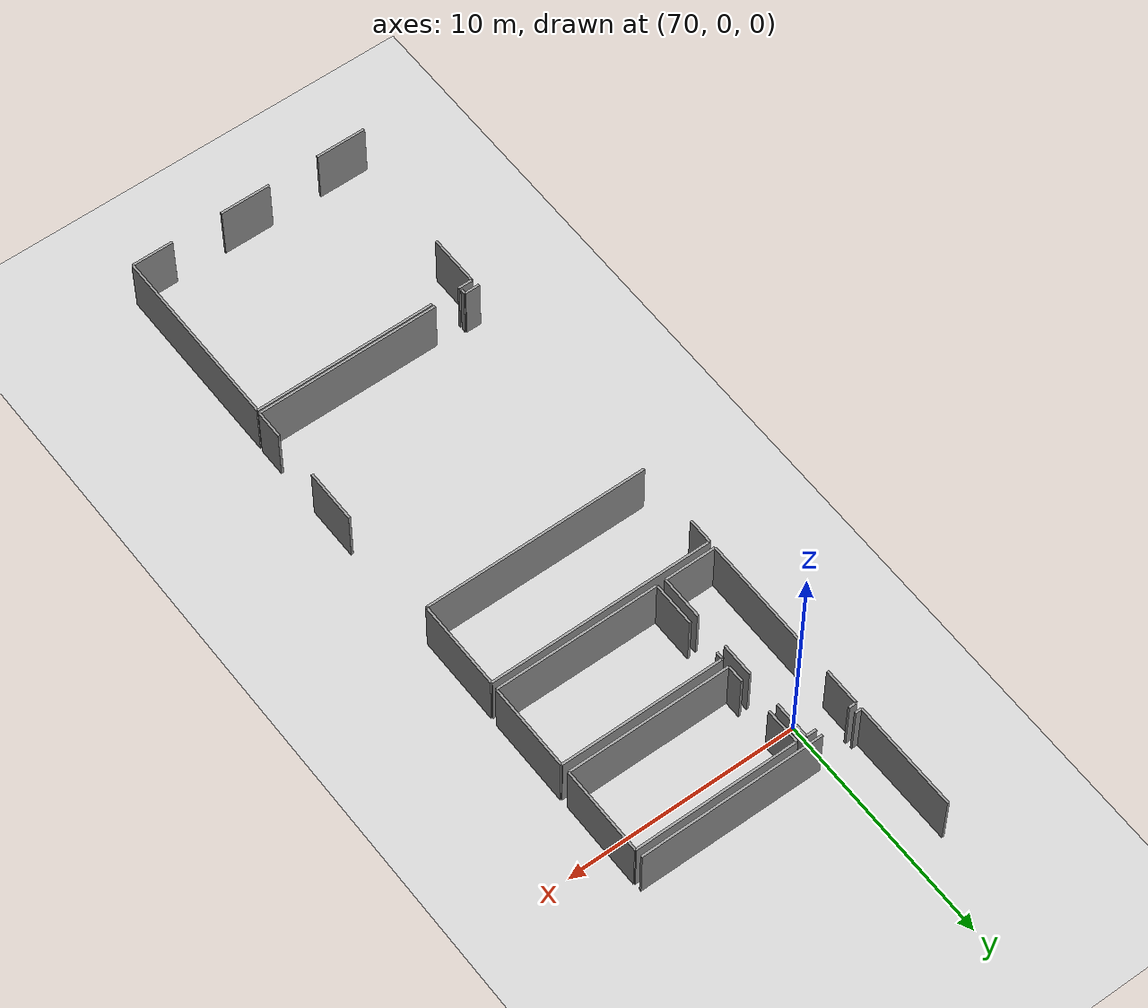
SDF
<sdf version="1.6">
 <world name="default">
  <model name="ground_plane">
   <static>1</static>
   <link name="link">
    <collision name="collision">
     <geometry><plane><normal>0 0 1</normal><size>100 100</size></plane></geometry>
     <surface><friction><ode><mu>100</mu><mu2>50</mu2></ode></friction></surface>
    </collision>
    <visual name="visual">
     <cast_shadows>0</cast_shadows>
     <geometry><plane><normal>0 0 1</normal><size>100 100</size></plane></geometry>
     <material>
      <script><uri>file://media/materials/scripts/gazebo.material</uri><name>Gazebo/Grey</name></script>
     </material>
    </visual>
   </link>
  </model>
  <model name="50010536_PLAN3">
   <static>1</static>
   <link name="Wall_795">
    <collision name="Wall_795_Collision">
     <geometry><box><size>7.95302034727 0.1 2.5</size></box></geometry>
     <pose>3.97651017363 0 1.25 0 0 0</pose>
    </collision>
    <visual name="Wall_795_Visual">
     <pose>3.97651017363 0 1.25 0 0 0</pose>
     <geometry><box><size>7.95302034727 0.1 2.5</size></box></geometry>
     <material>
      <script><uri>file://media/materials/scripts/gazebo.material</uri><name>Gazebo/Grey</name></script>
      <ambient>1 1 1 1</ambient>
     </material>
    </visual>
    <pose>180.776687934 -27.8071802685 0 0 0 3.14159265359</pose>
   </link>
   <link name="Wall_796">
    <collision name="Wall_796_Collision">
     <geometry><box><size>0.294829063899 0.1 2.5</size></box></geometry>
     <pose>0.147414531949 0 1.25 0 0 0</pose>
    </collision>
    <visual name="Wall_796_Visual">
     <pose>0.147414531949 0 1.25 0 0 0</pose>
     <geometry><box><size>0.294829063899 0.1 2.5</size></box></geometry>
     <material>
      <script><uri>file://media/materials/scripts/gazebo.material</uri><name>Gazebo/Grey</name></script>
      <ambient>1 1 1 1</ambient>
     </material>
    </visual>
    <pose>171.35968003 -27.8071802685 0 0 0 3.14159265359</pose>
   </link>
   <link name="Wall_797">
    <collision name="Wall_797_Collision">
     <geometry><box><size>4.70741069218 0.1 2.5</size></box></geometry>
     <pose>2.35370534609 0 1.25 0 0 0</pose>
    </collision>
    <visual name="Wall_797_Visual">
     <pose>2.35370534609 0 1.25 0 0 0</pose>
     <geometry><box><size>4.70741069218 0.1 2.5</size></box></geometry>
     <material>
      <script><uri>file://media/materials/scripts/gazebo.material</uri><name>Gazebo/Grey</name></script>
      <ambient>1 1 1 1</ambient>
     </material>
    </visual>
    <pose>171.064850967 -27.8071802685 0 0 0 1.5753817184</pose>
   </link>
   <link name="Wall_798">
    <collision name="Wall_798_Collision">
     <geometry><box><size>7.07996063867 0.1 2.5</size></box></geometry>
     <pose>3.53998031933 0 1.25 0 0 0</pose>
    </collision>
    <visual name="Wall_798_Visual">
     <pose>3.53998031933 0 1.25 0 0 0</pose>
     <geometry><box><size>7.07996063867 0.1 2.5</size></box></geometry>
     <material>
      <script><uri>file://media/materials/scripts/gazebo.material</uri><name>Gazebo/Grey</name></script>
      <ambient>1 1 1 1</ambient>
     </material>
    </visual>
    <pose>173.696727296 -28.1385772784 0 0 0 0.0</pose>
   </link>
   <link name="Wall_799">
    <collision name="Wall_799_Collision">
     <geometry><box><size>3.7992572136 0.1 2.5</size></box></geometry>
     <pose>1.8996286068 0 1.25 0 0 0</pose>
    </collision>
    <visual name="Wall_799_Visual">
     <pose>1.8996286068 0 1.25 0 0 0</pose>
     <geometry><box><size>3.7992572136 0.1 2.5</size></box></geometry>
     <material>
      <script><uri>file://media/materials/scripts/gazebo.material</uri><name>Gazebo/Grey</name></script>
      <ambient>1 1 1 1</ambient>
     </material>
    </visual>
    <pose>180.776687934 -28.1385772784 0 0 0 -1.57079632679</pose>
   </link>
   <link name="Wall_800">
    <collision name="Wall_800_Collision">
     <geometry><box><size>7.05939116909 0.1 2.5</size></box></geometry>
     <pose>3.52969558455 0 1.25 0 0 0</pose>
    </collision>
    <visual name="Wall_800_Visual">
     <pose>3.52969558455 0 1.25 0 0 0</pose>
     <geometry><box><size>7.05939116909 0.1 2.5</size></box></geometry>
     <material>
      <script><uri>file://media/materials/scripts/gazebo.material</uri><name>Gazebo/Grey</name></script>
      <ambient>1 1 1 1</ambient>
     </material>
    </visual>
    <pose>180.776687934 -31.937834492 0 0 0 3.14159265359</pose>
   </link>
   <link name="Wall_801">
    <collision name="Wall_801_Collision">
     <geometry><box><size>0.740500904676 0.1 2.5</size></box></geometry>
     <pose>0.370250452338 0 1.25 0 0 0</pose>
    </collision>
    <visual name="Wall_801_Visual">
     <pose>0.370250452338 0 1.25 0 0 0</pose>
     <geometry><box><size>0.740500904676 0.1 2.5</size></box></geometry>
     <material>
      <script><uri>file://media/materials/scripts/gazebo.material</uri><name>Gazebo/Grey</name></script>
      <ambient>1 1 1 1</ambient>
     </material>
    </visual>
    <pose>173.717296765 -31.937834492 0 0 0 1.57079632679</pose>
   </link>
   <link name="Wall_802">
    <collision name="Wall_802_Collision">
     <geometry><box><size>1.53929244152 0.1 2.5</size></box></geometry>
     <pose>0.76964622076 0 1.25 0 0 0</pose>
    </collision>
    <visual name="Wall_802_Visual">
     <pose>0.76964622076 0 1.25 0 0 0</pose>
     <geometry><box><size>1.53929244152 0.1 2.5</size></box></geometry>
     <material>
      <script><uri>file://media/materials/scripts/gazebo.material</uri><name>Gazebo/Grey</name></script>
      <ambient>1 1 1 1</ambient>
     </material>
    </visual>
    <pose>173.717296765 -29.6777322795 0 0 0 1.5841596626</pose>
   </link>
   <link name="Wall_803">
    <collision name="Wall_803_Collision">
     <geometry><box><size>1.9309906993 0.1 2.5</size></box></geometry>
     <pose>0.965495349649 0 1.25 0 0 0</pose>
    </collision>
    <visual name="Wall_803_Visual">
     <pose>0.965495349649 0 1.25 0 0 0</pose>
     <geometry><box><size>1.9309906993 0.1 2.5</size></box></geometry>
     <material>
      <script><uri>file://media/materials/scripts/gazebo.material</uri><name>Gazebo/Grey</name></script>
      <ambient>1 1 1 1</ambient>
     </material>
    </visual>
    <pose>173.700282513 -36.0997238358 0 0 0 1.57079632679</pose>
   </link>
   <link name="Wall_804">
    <collision name="Wall_804_Collision">
     <geometry><box><size>0.322001079262 0.1 2.5</size></box></geometry>
     <pose>0.161000539631 0 1.25 0 0 0</pose>
    </collision>
    <visual name="Wall_804_Visual">
     <pose>0.161000539631 0 1.25 0 0 0</pose>
     <geometry><box><size>0.322001079262 0.1 2.5</size></box></geometry>
     <material>
      <script><uri>file://media/materials/scripts/gazebo.material</uri><name>Gazebo/Grey</name></script>
      <ambient>1 1 1 1</ambient>
     </material>
    </visual>
    <pose>173.700282513 -32.6415135067 0 0 0 1.57079632679</pose>
   </link>
   <link name="Wall_805">
    <collision name="Wall_805_Collision">
     <geometry><box><size>7.10383138114 0.1 2.5</size></box></geometry>
     <pose>3.55191569057 0 1.25 0 0 0</pose>
    </collision>
    <visual name="Wall_805_Visual">
     <pose>3.55191569057 0 1.25 0 0 0</pose>
     <geometry><box><size>7.10383138114 0.1 2.5</size></box></geometry>
     <material>
      <script><uri>file://media/materials/scripts/gazebo.material</uri><name>Gazebo/Grey</name></script>
      <ambient>1 1 1 1</ambient>
     </material>
    </visual>
    <pose>173.700282513 -32.3195124274 0 0 0 0.0</pose>
   </link>
   <link name="Wall_806">
    <collision name="Wall_806_Collision">
     <geometry><box><size>3.78630606609 0.1 2.5</size></box></geometry>
     <pose>1.89315303304 0 1.25 0 0 0</pose>
    </collision>
    <visual name="Wall_806_Visual">
     <pose>1.89315303304 0 1.25 0 0 0</pose>
     <geometry><box><size>3.78630606609 0.1 2.5</size></box></geometry>
     <material>
      <script><uri>file://media/materials/scripts/gazebo.material</uri><name>Gazebo/Grey</name></script>
      <ambient>1 1 1 1</ambient>
     </material>
    </visual>
    <pose>180.804113894 -32.3195124274 0 0 0 -1.57079632679</pose>
   </link>
   <link name="Wall_807">
    <collision name="Wall_807_Collision">
     <geometry><box><size>7.10383399556 0.1 2.5</size></box></geometry>
     <pose>3.55191699778 0 1.25 0 0 0</pose>
    </collision>
    <visual name="Wall_807_Visual">
     <pose>3.55191699778 0 1.25 0 0 0</pose>
     <geometry><box><size>7.10383399556 0.1 2.5</size></box></geometry>
     <material>
      <script><uri>file://media/materials/scripts/gazebo.material</uri><name>Gazebo/Grey</name></script>
      <ambient>1 1 1 1</ambient>
     </material>
    </visual>
    <pose>180.804113894 -36.1058184935 0 0 0 3.14073471429</pose>
   </link>
   <link name="Wall_808">
    <collision name="Wall_808_Collision">
     <geometry><box><size>4.88512205187 0.1 2.5</size></box></geometry>
     <pose>2.44256102593 0 1.25 0 0 0</pose>
    </collision>
    <visual name="Wall_808_Visual">
     <pose>2.44256102593 0 1.25 0 0 0</pose>
     <geometry><box><size>4.88512205187 0.1 2.5</size></box></geometry>
     <material>
      <script><uri>file://media/materials/scripts/gazebo.material</uri><name>Gazebo/Grey</name></script>
      <ambient>1 1 1 1</ambient>
     </material>
    </visual>
    <pose>171.068152239 -36.1086118782 0 0 0 1.57079632679</pose>
   </link>
   <link name="Wall_809">
    <collision name="Wall_809_Collision">
     <geometry><box><size>1.5970542488 0.1 2.5</size></box></geometry>
     <pose>0.798527124401 0 1.25 0 0 0</pose>
    </collision>
    <visual name="Wall_809_Visual">
     <pose>0.798527124401 0 1.25 0 0 0</pose>
     <geometry><box><size>1.5970542488 0.1 2.5</size></box></geometry>
     <material>
      <script><uri>file://media/materials/scripts/gazebo.material</uri><name>Gazebo/Grey</name></script>
      <ambient>1 1 1 1</ambient>
     </material>
    </visual>
    <pose>171.068152239 -29.7041424626 0 0 0 1.57079632679</pose>
   </link>
   <link name="Wall_810">
    <collision name="Wall_810_Collision">
     <geometry><box><size>0.338761387804 0.1 2.5</size></box></geometry>
     <pose>0.169380693902 0 1.25 0 0 0</pose>
    </collision>
    <visual name="Wall_810_Visual">
     <pose>0.169380693902 0 1.25 0 0 0</pose>
     <geometry><box><size>0.338761387804 0.1 2.5</size></box></geometry>
     <material>
      <script><uri>file://media/materials/scripts/gazebo.material</uri><name>Gazebo/Grey</name></script>
      <ambient>1 1 1 1</ambient>
     </material>
    </visual>
    <pose>171.068152239 -28.1070882138 0 0 0 0.0</pose>
   </link>
   <link name="Wall_811">
    <collision name="Wall_811_Collision">
     <geometry><box><size>0.445671840777 0.1 2.5</size></box></geometry>
     <pose>0.222835920389 0 1.25 0 0 0</pose>
    </collision>
    <visual name="Wall_811_Visual">
     <pose>0.222835920389 0 1.25 0 0 0</pose>
     <geometry><box><size>0.445671840777 0.1 2.5</size></box></geometry>
     <material>
      <script><uri>file://media/materials/scripts/gazebo.material</uri><name>Gazebo/Grey</name></script>
      <ambient>1 1 1 1</ambient>
     </material>
    </visual>
    <pose>172.863282862 -28.1070882138 0 0 0 0.0</pose>
   </link>
   <link name="Wall_812">
    <collision name="Wall_812_Collision">
     <geometry><box><size>1.60238707425 0.1 2.5</size></box></geometry>
     <pose>0.801193537123 0 1.25 0 0 0</pose>
    </collision>
    <visual name="Wall_812_Visual">
     <pose>0.801193537123 0 1.25 0 0 0</pose>
     <geometry><box><size>1.60238707425 0.1 2.5</size></box></geometry>
     <material>
      <script><uri>file://media/materials/scripts/gazebo.material</uri><name>Gazebo/Grey</name></script>
      <ambient>1 1 1 1</ambient>
     </material>
    </visual>
    <pose>173.308954703 -28.1070882138 0 0 0 -1.57079632679</pose>
   </link>
   <link name="Wall_813">
    <collision name="Wall_813_Collision">
     <geometry><box><size>1.43326032441 0.1 2.5</size></box></geometry>
     <pose>0.716630162207 0 1.25 0 0 0</pose>
    </collision>
    <visual name="Wall_813_Visual">
     <pose>0.716630162207 0 1.25 0 0 0</pose>
     <geometry><box><size>1.43326032441 0.1 2.5</size></box></geometry>
     <material>
      <script><uri>file://media/materials/scripts/gazebo.material</uri><name>Gazebo/Grey</name></script>
      <ambient>1 1 1 1</ambient>
     </material>
    </visual>
    <pose>173.308954703 -31.2496460655 0 0 0 -1.57079632679</pose>
   </link>
   <link name="Wall_814">
    <collision name="Wall_814_Collision">
     <geometry><box><size>1.88985176015 0.1 2.5</size></box></geometry>
     <pose>0.944925880075 0 1.25 0 0 0</pose>
    </collision>
    <visual name="Wall_814_Visual">
     <pose>0.944925880075 0 1.25 0 0 0</pose>
     <geometry><box><size>1.88985176015 0.1 2.5</size></box></geometry>
     <material>
      <script><uri>file://media/materials/scripts/gazebo.material</uri><name>Gazebo/Grey</name></script>
      <ambient>1 1 1 1</ambient>
     </material>
    </visual>
    <pose>173.308954703 -34.2159667333 0 0 0 -1.57079632679</pose>
   </link>
   <link name="Wall_815">
    <collision name="Wall_815_Collision">
     <geometry><box><size>2.24080420437 0.1 2.5</size></box></geometry>
     <pose>1.12040210219 0 1.25 0 0 0</pose>
    </collision>
    <visual name="Wall_815_Visual">
     <pose>1.12040210219 0 1.25 0 0 0</pose>
     <geometry><box><size>2.24080420437 0.1 2.5</size></box></geometry>
     <material>
      <script><uri>file://media/materials/scripts/gazebo.material</uri><name>Gazebo/Grey</name></script>
      <ambient>1 1 1 1</ambient>
     </material>
    </visual>
    <pose>173.308954703 -36.1058184935 0 0 0 -3.14034605405</pose>
   </link>
   <link name="Wall_816">
    <collision name="Wall_816_Collision">
     <geometry><box><size>9.72402628321 0.1 2.5</size></box></geometry>
     <pose>4.86201314161 0 1.25 0 0 0</pose>
    </collision>
    <visual name="Wall_816_Visual">
     <pose>4.86201314161 0 1.25 0 0 0</pose>
     <geometry><box><size>9.72402628321 0.1 2.5</size></box></geometry>
     <material>
      <script><uri>file://media/materials/scripts/gazebo.material</uri><name>Gazebo/Grey</name></script>
      <ambient>1 1 1 1</ambient>
     </material>
    </visual>
    <pose>171.062057582 -36.4260419643 0 0 0 0.0</pose>
   </link>
   <link name="Wall_817">
    <collision name="Wall_817_Collision">
     <geometry><box><size>3.8627432308 0.1 2.5</size></box></geometry>
     <pose>1.9313716154 0 1.25 0 0 0</pose>
    </collision>
    <visual name="Wall_817_Visual">
     <pose>1.9313716154 0 1.25 0 0 0</pose>
     <geometry><box><size>3.8627432308 0.1 2.5</size></box></geometry>
     <material>
      <script><uri>file://media/materials/scripts/gazebo.material</uri><name>Gazebo/Grey</name></script>
      <ambient>1 1 1 1</ambient>
     </material>
    </visual>
    <pose>180.786083865 -36.4260419643 0 0 0 -1.57079632679</pose>
   </link>
   <link name="Wall_818">
    <collision name="Wall_818_Collision">
     <geometry><box><size>9.730628829 0.1 2.5</size></box></geometry>
     <pose>4.8653144145 0 1.25 0 0 0</pose>
    </collision>
    <visual name="Wall_818_Visual">
     <pose>4.8653144145 0 1.25 0 0 0</pose>
     <geometry><box><size>9.730628829 0.1 2.5</size></box></geometry>
     <material>
      <script><uri>file://media/materials/scripts/gazebo.material</uri><name>Gazebo/Grey</name></script>
      <ambient>1 1 1 1</ambient>
     </material>
    </visual>
    <pose>180.786083865 -40.2887851951 0 0 0 3.14159265359</pose>
   </link>
   <link name="Wall_820">
    <collision name="Wall_820_Collision">
     <geometry><box><size>1.08817036577 0.1 2.5</size></box></geometry>
     <pose>0.544085182883 0 1.25 0 0 0</pose>
    </collision>
    <visual name="Wall_820_Visual">
     <pose>0.544085182883 0 1.25 0 0 0</pose>
     <geometry><box><size>1.08817036577 0.1 2.5</size></box></geometry>
     <material>
      <script><uri>file://media/materials/scripts/gazebo.material</uri><name>Gazebo/Grey</name></script>
      <ambient>1 1 1 1</ambient>
     </material>
    </visual>
    <pose>171.055455036 -37.5141922991 0 0 0 1.56472872331</pose>
   </link>
   <link name="Wall_910">
    <collision name="Wall_910_Collision">
     <geometry><box><size>2.23902485478 0.1 2.5</size></box></geometry>
     <pose>1.11951242739 0 1.25 0 0 0</pose>
    </collision>
    <visual name="Wall_910_Visual">
     <pose>1.11951242739 0 1.25 0 0 0</pose>
     <geometry><box><size>2.23902485478 0.1 2.5</size></box></geometry>
     <material>
      <script><uri>file://media/materials/scripts/gazebo.material</uri><name>Gazebo/Grey</name></script>
      <ambient>1 1 1 1</ambient>
     </material>
    </visual>
    <pose>171.068406184 -53.0289051836 0 0 0 1.57079632679</pose>
   </link>
   <link name="Wall_911">
    <collision name="Wall_911_Collision">
     <geometry><box><size>0.610735485509 0.1 2.5</size></box></geometry>
     <pose>0.305367742755 0 1.25 0 0 0</pose>
    </collision>
    <visual name="Wall_911_Visual">
     <pose>0.305367742755 0 1.25 0 0 0</pose>
     <geometry><box><size>0.610735485509 0.1 2.5</size></box></geometry>
     <material>
      <script><uri>file://media/materials/scripts/gazebo.material</uri><name>Gazebo/Grey</name></script>
      <ambient>1 1 1 1</ambient>
     </material>
    </visual>
    <pose>171.068406184 -50.7898803289 0 0 0 0.0</pose>
   </link>
   <link name="Wall_912">
    <collision name="Wall_912_Collision">
     <geometry><box><size>7.86845697235 0.1 2.5</size></box></geometry>
     <pose>3.93422848618 0 1.25 0 0 0</pose>
    </collision>
    <visual name="Wall_912_Visual">
     <pose>3.93422848618 0 1.25 0 0 0</pose>
     <geometry><box><size>7.86845697235 0.1 2.5</size></box></geometry>
     <material>
      <script><uri>file://media/materials/scripts/gazebo.material</uri><name>Gazebo/Grey</name></script>
      <ambient>1 1 1 1</ambient>
     </material>
    </visual>
    <pose>172.906707298 -50.7898803289 0 0 0 0.0</pose>
   </link>
   <link name="Wall_913">
    <collision name="Wall_913_Collision">
     <geometry><box><size>8.14804939212 0.1 2.5</size></box></geometry>
     <pose>4.07402469606 0 1.25 0 0 0</pose>
    </collision>
    <visual name="Wall_913_Visual">
     <pose>4.07402469606 0 1.25 0 0 0</pose>
     <geometry><box><size>8.14804939212 0.1 2.5</size></box></geometry>
     <material>
      <script><uri>file://media/materials/scripts/gazebo.material</uri><name>Gazebo/Grey</name></script>
      <ambient>1 1 1 1</ambient>
     </material>
    </visual>
    <pose>180.77516427 -50.7898803289 0 0 0 -1.57079632679</pose>
   </link>
   <link name="Wall_914">
    <collision name="Wall_914_Collision">
     <geometry><box><size>1.77456115291 0.1 2.5</size></box></geometry>
     <pose>0.887280576453 0 1.25 0 0 0</pose>
    </collision>
    <visual name="Wall_914_Visual">
     <pose>0.887280576453 0 1.25 0 0 0</pose>
     <geometry><box><size>1.77456115291 0.1 2.5</size></box></geometry>
     <material>
      <script><uri>file://media/materials/scripts/gazebo.material</uri><name>Gazebo/Grey</name></script>
      <ambient>1 1 1 1</ambient>
     </material>
    </visual>
    <pose>180.77516427 -58.937929721 0 0 0 3.14159265359</pose>
   </link>
   <link name="Wall_915">
    <collision name="Wall_915_Collision">
     <geometry><box><size>2.19687013935 0.1 2.5</size></box></geometry>
     <pose>1.09843506968 0 1.25 0 0 0</pose>
    </collision>
    <visual name="Wall_915_Visual">
     <pose>1.09843506968 0 1.25 0 0 0</pose>
     <geometry><box><size>2.19687013935 0.1 2.5</size></box></geometry>
     <material>
      <script><uri>file://media/materials/scripts/gazebo.material</uri><name>Gazebo/Grey</name></script>
      <ambient>1 1 1 1</ambient>
     </material>
    </visual>
    <pose>176.780116179 -58.937929721 0 0 0 3.14159265359</pose>
   </link>
   <link name="Wall_916">
    <collision name="Wall_916_Collision">
     <geometry><box><size>2.18569660032 0.1 2.5</size></box></geometry>
     <pose>1.09284830016 0 1.25 0 0 0</pose>
    </collision>
    <visual name="Wall_916_Visual">
     <pose>1.09284830016 0 1.25 0 0 0</pose>
     <geometry><box><size>2.18569660032 0.1 2.5</size></box></geometry>
     <material>
      <script><uri>file://media/materials/scripts/gazebo.material</uri><name>Gazebo/Grey</name></script>
      <ambient>1 1 1 1</ambient>
     </material>
    </visual>
    <pose>172.354378948 -58.937929721 0 0 0 3.14159265359</pose>
   </link>
   <link name="Wall_925">
    <collision name="Wall_925_Collision">
     <geometry><box><size>2.33146049583 0.1 2.5</size></box></geometry>
     <pose>1.16573024791 0 1.25 0 0 0</pose>
    </collision>
    <visual name="Wall_925_Visual">
     <pose>1.16573024791 0 1.25 0 0 0</pose>
     <geometry><box><size>2.33146049583 0.1 2.5</size></box></geometry>
     <material>
      <script><uri>file://media/materials/scripts/gazebo.material</uri><name>Gazebo/Grey</name></script>
      <ambient>1 1 1 1</ambient>
     </material>
    </visual>
    <pose>180.789385138 -44.9862425801 0 0 0 -1.57079632679</pose>
   </link>
   <link name="Wall_926">
    <collision name="Wall_926_Collision">
     <geometry><box><size>1.24026283211 0.1 2.5</size></box></geometry>
     <pose>0.620131416056 0 1.25 0 0 0</pose>
    </collision>
    <visual name="Wall_926_Visual">
     <pose>0.620131416056 0 1.25 0 0 0</pose>
     <geometry><box><size>1.24026283211 0.1 2.5</size></box></geometry>
     <material>
      <script><uri>file://media/materials/scripts/gazebo.material</uri><name>Gazebo/Grey</name></script>
      <ambient>1 1 1 1</ambient>
     </material>
    </visual>
    <pose>180.789385138 -49.4096943148 0 0 0 -1.57079632679</pose>
   </link>
   <link name="Wall_927">
    <collision name="Wall_927_Collision">
     <geometry><box><size>7.9250864997 0.1 2.5</size></box></geometry>
     <pose>3.96254324985 0 1.25 0 0 0</pose>
    </collision>
    <visual name="Wall_927_Visual">
     <pose>3.96254324985 0 1.25 0 0 0</pose>
     <geometry><box><size>7.9250864997 0.1 2.5</size></box></geometry>
     <material>
      <script><uri>file://media/materials/scripts/gazebo.material</uri><name>Gazebo/Grey</name></script>
      <ambient>1 1 1 1</ambient>
     </material>
    </visual>
    <pose>180.789385138 -50.6499571469 0 0 0 3.14159265359</pose>
   </link>
   <link name="Wall_928">
    <collision name="Wall_928_Collision">
     <geometry><box><size>0.192489604165 0.1 2.5</size></box></geometry>
     <pose>0.0962448020823 0 1.25 0 0 0</pose>
    </collision>
    <visual name="Wall_928_Visual">
     <pose>0.0962448020823 0 1.25 0 0 0</pose>
     <geometry><box><size>0.192489604165 0.1 2.5</size></box></geometry>
     <material>
      <script><uri>file://media/materials/scripts/gazebo.material</uri><name>Gazebo/Grey</name></script>
      <ambient>1 1 1 1</ambient>
     </material>
    </visual>
    <pose>171.627083135 -50.6499571469 0 0 0 1.57079632679</pose>
   </link>
   <link name="Wall_929">
    <collision name="Wall_929_Collision">
     <geometry><box><size>0.654921753484 0.1 2.5</size></box></geometry>
     <pose>0.327460876742 0 1.25 0 0 0</pose>
    </collision>
    <visual name="Wall_929_Visual">
     <pose>0.327460876742 0 1.25 0 0 0</pose>
     <geometry><box><size>0.654921753484 0.1 2.5</size></box></geometry>
     <material>
      <script><uri>file://media/materials/scripts/gazebo.material</uri><name>Gazebo/Grey</name></script>
      <ambient>1 1 1 1</ambient>
     </material>
    </visual>
    <pose>171.627083135 -50.4574675428 0 0 0 3.14159265359</pose>
   </link>
   <pose>-102.5 29.6500539631 0 0 0 0</pose>
  </model>
 </world>
</sdf>
